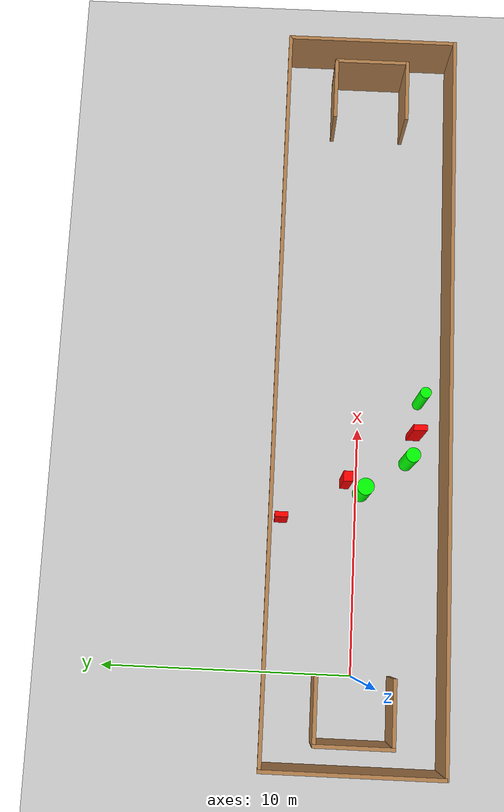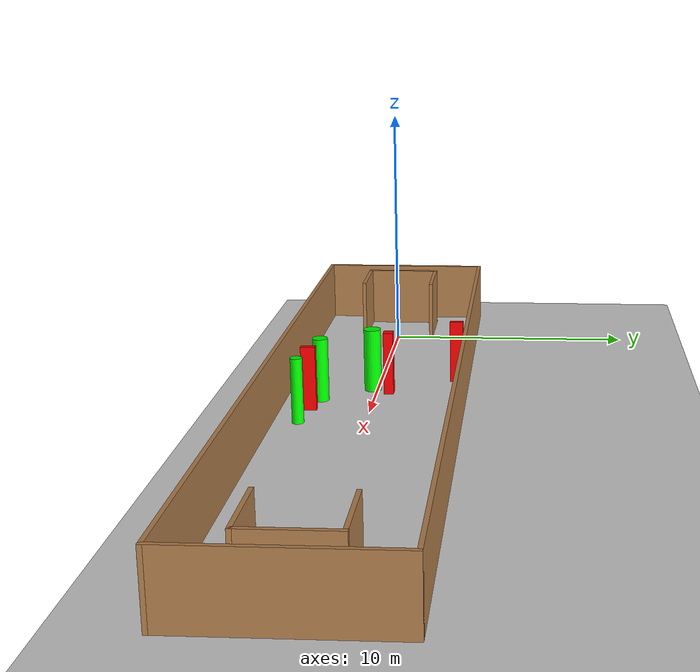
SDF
<sdf version="1.7">
 <world name="default">
  <light name="sun" type="directional">
   <pose>0 0 10 0 -0 0</pose>
   <diffuse>0.8 0.8 0.8 1</diffuse>
   <specular>0.2 0.2 0.2 1</specular>
   <attenuation>
    <range>1000</range>
    <constant>0.9</constant>
    <linear>0.01</linear>
    <quadratic>0.001</quadratic>
   </attenuation>
   <direction>-0.5 0.1 -0.9</direction>
   <spot><inner_angle>0</inner_angle><outer_angle>0</outer_angle><falloff>0</falloff></spot>
  </light>
  <model name="ground_plane">
   <static>1</static>
   <link name="link">
    <collision name="collision">
     <geometry><plane><normal>0 0 1</normal><size>100 100</size></plane></geometry>
     <surface>
      <contact><collide_bitmask>65535</collide_bitmask></contact>
      <friction><ode><mu>100</mu><mu2>50</mu2></ode></friction>
     </surface>
    </collision>
    <visual name="visual">
     <cast_shadows>0</cast_shadows>
     <geometry><plane><normal>0 0 1</normal><size>100 100</size></plane></geometry>
     <material>
      <script><uri>file://media/materials/scripts/gazebo.material</uri><name>Gazebo/Grey</name></script>
     </material>
    </visual>
   </link>
  </model>
  <gravity>0 0 -9.8</gravity>
  <magnetic_field>6e-06 2.3e-05 -4.2e-05</magnetic_field>
  <atmosphere type="adiabatic"/>
  <physics type="ode">
   <max_step_size>0.001</max_step_size>
   <real_time_factor>1</real_time_factor>
   <real_time_update_rate>1000</real_time_update_rate>
  </physics>
  <scene><ambient>0.4 0.4 0.4 1</ambient><background>0.7 0.7 0.7 1</background><shadows>1</shadows></scene>
  <spherical_coordinates>
   <surface_model>EARTH_WGS84</surface_model>
   <latitude_deg>0</latitude_deg>
   <longitude_deg>0</longitude_deg>
   <elevation>0</elevation>
   <heading_deg>0</heading_deg>
  </spherical_coordinates>
  <model name="my_base_walls">
   <link name="Wall_0">
    <collision name="Wall_0_Collision">
     <geometry><box><size>7.15 0.15 2.5</size></box></geometry>
     <pose>0 0 1.25 0 -0 0</pose>
    </collision>
    <visual name="Wall_0_Visual">
     <pose>0 0 1.25 0 -0 0</pose>
     <geometry><box><size>7.15 0.15 2.5</size></box></geometry>
     <material>
      <script><uri>file://media/materials/scripts/gazebo.material</uri><name>Gazebo/Wood</name></script>
      <ambient>1 1 1 1</ambient>
     </material>
     <meta><layer>0</layer></meta>
    </visual>
    <pose>-15 0 0 0 -0 1.5708</pose>
   </link>
   <link name="Wall_10">
    <collision name="Wall_10_Collision">
     <geometry><box><size>2.65 0.15 2.5</size></box></geometry>
     <pose>0 0 1.25 0 -0 0</pose>
    </collision>
    <visual name="Wall_10_Visual">
     <pose>0 0 1.25 0 -0 0</pose>
     <geometry><box><size>2.65 0.15 2.5</size></box></geometry>
     <material>
      <script><uri>file://media/materials/scripts/gazebo.material</uri><name>Gazebo/Wood</name></script>
      <ambient>1 1 1 1</ambient>
     </material>
     <meta><layer>0</layer></meta>
    </visual>
    <pose>-12.75 -1.5 0 0 -0 0</pose>
   </link>
   <link name="Wall_12">
    <collision name="Wall_12_Collision">
     <geometry><box><size>2.65 0.15 2.5</size></box></geometry>
     <pose>0 0 1.25 0 -0 0</pose>
    </collision>
    <visual name="Wall_12_Visual">
     <pose>0 0 1.25 0 -0 0</pose>
     <geometry><box><size>2.65 0.15 2.5</size></box></geometry>
     <material>
      <script><uri>file://media/materials/scripts/gazebo.material</uri><name>Gazebo/Wood</name></script>
      <ambient>1 1 1 1</ambient>
     </material>
     <meta><layer>0</layer></meta>
    </visual>
    <pose>-12.75 1.5 0 0 -0 0</pose>
   </link>
   <link name="Wall_14">
    <collision name="Wall_14_Collision">
     <geometry><box><size>3.15 0.15 2.5</size></box></geometry>
     <pose>0 0 1.25 0 -0 0</pose>
    </collision>
    <visual name="Wall_14_Visual">
     <pose>0 0 1.25 0 -0 0</pose>
     <geometry><box><size>3.15 0.15 2.5</size></box></geometry>
     <material>
      <script><uri>file://media/materials/scripts/gazebo.material</uri><name>Gazebo/Wood</name></script>
      <ambient>1 1 1 1</ambient>
     </material>
     <meta><layer>0</layer></meta>
    </visual>
    <pose>14 0 0 0 -0 -1.5708</pose>
   </link>
   <link name="Wall_15">
    <collision name="Wall_15_Collision">
     <geometry><box><size>2.65 0.15 2.5</size></box></geometry>
     <pose>0 0 1.25 0 -0 0</pose>
    </collision>
    <visual name="Wall_15_Visual">
     <pose>0 0 1.25 0 -0 0</pose>
     <geometry><box><size>2.65 0.15 2.5</size></box></geometry>
     <material>
      <script><uri>file://media/materials/scripts/gazebo.material</uri><name>Gazebo/Wood</name></script>
      <ambient>1 1 1 1</ambient>
     </material>
     <meta><layer>0</layer></meta>
    </visual>
    <pose>12.75 -1.5 0 0 -0 3.14159</pose>
   </link>
   <link name="Wall_17">
    <collision name="Wall_17_Collision">
     <geometry><box><size>2.65 0.15 2.5</size></box></geometry>
     <pose>0 0 1.25 0 -0 0</pose>
    </collision>
    <visual name="Wall_17_Visual">
     <pose>0 0 1.25 0 -0 0</pose>
     <geometry><box><size>2.65 0.15 2.5</size></box></geometry>
     <material>
      <script><uri>file://media/materials/scripts/gazebo.material</uri><name>Gazebo/Wood</name></script>
      <ambient>1 1 1 1</ambient>
     </material>
     <meta><layer>0</layer></meta>
    </visual>
    <pose>12.75 1.5 0 0 -0 3.14159</pose>
   </link>
   <link name="Wall_2">
    <collision name="Wall_2_Collision">
     <geometry><box><size>30.15 0.15 2.5</size></box></geometry>
     <pose>0 0 1.25 0 -0 0</pose>
    </collision>
    <visual name="Wall_2_Visual">
     <pose>0 0 1.25 0 -0 0</pose>
     <geometry><box><size>30.15 0.15 2.5</size></box></geometry>
     <material>
      <script><uri>file://media/materials/scripts/gazebo.material</uri><name>Gazebo/Wood</name></script>
      <ambient>1 1 1 1</ambient>
     </material>
     <meta><layer>0</layer></meta>
    </visual>
    <pose>-0 -3.5 0 0 -0 0</pose>
   </link>
   <link name="Wall_4">
    <collision name="Wall_4_Collision">
     <geometry><box><size>30.15 0.15 2.5</size></box></geometry>
     <pose>0 0 1.25 0 -0 0</pose>
    </collision>
    <visual name="Wall_4_Visual">
     <pose>0 0 1.25 0 -0 0</pose>
     <geometry><box><size>30.15 0.15 2.5</size></box></geometry>
     <material>
      <script><uri>file://media/materials/scripts/gazebo.material</uri><name>Gazebo/Wood</name></script>
      <ambient>1 1 1 1</ambient>
     </material>
     <meta><layer>0</layer></meta>
    </visual>
    <pose>-0 3.5 0 0 -0 0</pose>
   </link>
   <link name="Wall_6">
    <collision name="Wall_6_Collision">
     <geometry><box><size>7.15 0.15 2.5</size></box></geometry>
     <pose>0 0 1.25 0 -0 0</pose>
    </collision>
    <visual name="Wall_6_Visual">
     <pose>0 0 1.25 0 -0 0</pose>
     <geometry><box><size>7.15 0.15 2.5</size></box></geometry>
     <material>
      <script><uri>file://media/materials/scripts/gazebo.material</uri><name>Gazebo/Wood</name></script>
      <ambient>1 1 1 1</ambient>
     </material>
     <meta><layer>0</layer></meta>
    </visual>
    <pose>15 0 0 0 -0 -1.5708</pose>
   </link>
   <link name="Wall_9">
    <collision name="Wall_9_Collision">
     <geometry><box><size>3.15 0.15 2.5</size></box></geometry>
     <pose>0 0 1.25 0 -0 0</pose>
    </collision>
    <visual name="Wall_9_Visual">
     <pose>0 0 1.25 0 -0 0</pose>
     <geometry><box><size>3.15 0.15 2.5</size></box></geometry>
     <material>
      <script><uri>file://media/materials/scripts/gazebo.material</uri><name>Gazebo/Wood</name></script>
      <ambient>1 1 1 1</ambient>
     </material>
     <meta><layer>0</layer></meta>
    </visual>
    <pose>-14 0 0 0 -0 -1.5708</pose>
   </link>
   <static>1</static>
   <pose>11.5 0 0 0 -0 0</pose>
  </model>
  <model name="cylinder1">
   <static>1</static>
   <link name="link">
    <inertial>
     <mass>1</mass>
     <inertia><ixx>0.5</ixx><ixy>0</ixy><ixz>0</ixz><iyy>0.5</iyy><iyz>0</iyz><izz>1</izz></inertia>
    </inertial>
    <collision name="collision">
     <geometry><cylinder><radius>0.2950200053841364</radius><length>2.5</length></cylinder></geometry>
    </collision>
    <visual name="visual">
     <geometry><cylinder><radius>0.2950200053841364</radius><length>2.5</length></cylinder></geometry>
     <material>
      <ambient>0 1 0 1</ambient>
      <diffuse>0 1 0 1</diffuse>
      <specular>0.1 0.1 0.1 1</specular>
      <emissive>0 0 0 0</emissive>
     </material>
    </visual>
   </link>
   <pose>8.66906310697186 -2.0399484564936725 1.25 0 0 0</pose>
  </model>
  <model name="cylinder2">
   <static>1</static>
   <link name="link">
    <inertial>
     <mass>1</mass>
     <inertia><ixx>0.5</ixx><ixy>0</ixy><ixz>0</ixz><iyy>0.5</iyy><iyz>0</iyz><izz>1</izz></inertia>
    </inertial>
    <collision name="collision">
     <geometry><cylinder><radius>0.22330520569799783</radius><length>2.5</length></cylinder></geometry>
    </collision>
    <visual name="visual">
     <geometry><cylinder><radius>0.22330520569799783</radius><length>2.5</length></cylinder></geometry>
     <material>
      <ambient>0 1 0 1</ambient>
      <diffuse>0 1 0 1</diffuse>
      <specular>0.1 0.1 0.1 1</specular>
      <emissive>0 0 0 0</emissive>
     </material>
    </visual>
   </link>
   <pose>11.202028667041171 -2.491095862904671 1.25 0 0 0</pose>
  </model>
  <model name="cylinder3">
   <static>1</static>
   <link name="link">
    <inertial>
     <mass>1</mass>
     <inertia><ixx>0.5</ixx><ixy>0</ixy><ixz>0</ixz><iyy>0.5</iyy><iyz>0</iyz><izz>1</izz></inertia>
    </inertial>
    <collision name="collision">
     <geometry><cylinder><radius>0.3391090707652388</radius><length>2.5</length></cylinder></geometry>
    </collision>
    <visual name="visual">
     <geometry><cylinder><radius>0.3391090707652388</radius><length>2.5</length></cylinder></geometry>
     <material>
      <ambient>0 1 0 1</ambient>
      <diffuse>0 1 0 1</diffuse>
      <specular>0.1 0.1 0.1 1</specular>
      <emissive>0 0 0 0</emissive>
     </material>
    </visual>
   </link>
   <pose>7.334485445721761 -0.1936427696957974 1.25 0 0 0</pose>
  </model>
  <model name="box1">
   <static>1</static>
   <link name="link">
    <inertial>
     <mass>1</mass>
     <inertia><ixx>0.083</ixx><ixy>0</ixy><ixz>0</ixz><iyy>0.083</iyy><iyz>0</iyz><izz>0.083</izz></inertia>
    </inertial>
    <collision name="collision">
     <geometry><box><size>0.20383285830795694 0.5236445830690767 2.5</size></box></geometry>
    </collision>
    <visual name="visual">
     <geometry><box><size>0.20383285830795694 0.5236445830690767 2.5</size></box></geometry>
     <material>
      <ambient>1 0 0 1</ambient>
      <diffuse>1 0 0 1</diffuse>
      <specular>0.1 0.1 0.1 1</specular>
      <emissive>0 0 0 0</emissive>
     </material>
    </visual>
    <sensor name="my_contact" type="contact">
     <contact><collision>box_collision</collision><topic>__default_topic__</topic></contact>
    </sensor>
   </link>
   <pose>6.107063705290132 3.06340137866197 1.25 0 0 0</pose>
  </model>
  <model name="box2">
   <static>1</static>
   <link name="link">
    <inertial>
     <mass>1</mass>
     <inertia><ixx>0.083</ixx><ixy>0</ixy><ixz>0</ixz><iyy>0.083</iyy><iyz>0</iyz><izz>0.083</izz></inertia>
    </inertial>
    <collision name="collision">
     <geometry><box><size>0.4058537552530347 0.3792683561306987 2.5</size></box></geometry>
    </collision>
    <visual name="visual">
     <geometry><box><size>0.4058537552530347 0.3792683561306987 2.5</size></box></geometry>
     <material>
      <ambient>1 0 0 1</ambient>
      <diffuse>1 0 0 1</diffuse>
      <specular>0.1 0.1 0.1 1</specular>
      <emissive>0 0 0 0</emissive>
     </material>
    </visual>
    <sensor name="my_contact" type="contact">
     <contact><collision>box_collision</collision><topic>__default_topic__</topic></contact>
    </sensor>
   </link>
   <pose>7.717300454939256 0.4920909789774912 1.25 0 0 0</pose>
  </model>
  <model name="box3">
   <static>1</static>
   <link name="link">
    <inertial>
     <mass>1</mass>
     <inertia><ixx>0.083</ixx><ixy>0</ixy><ixz>0</ixz><iyy>0.083</iyy><iyz>0</iyz><izz>0.083</izz></inertia>
    </inertial>
    <collision name="collision">
     <geometry><box><size>0.23744704643790404 0.5548742893484222 2.5</size></box></geometry>
    </collision>
    <visual name="visual">
     <geometry><box><size>0.23744704643790404 0.5548742893484222 2.5</size></box></geometry>
     <material>
      <ambient>1 0 0 1</ambient>
      <diffuse>1 0 0 1</diffuse>
      <specular>0.1 0.1 0.1 1</specular>
      <emissive>0 0 0 0</emissive>
     </material>
    </visual>
    <sensor name="my_contact" type="contact">
     <contact><collision>box_collision</collision><topic>__default_topic__</topic></contact>
    </sensor>
   </link>
   <pose>9.777413515063234 -2.3063361128381077 1.25 0 0 0</pose>
  </model>
 </world>
</sdf>
